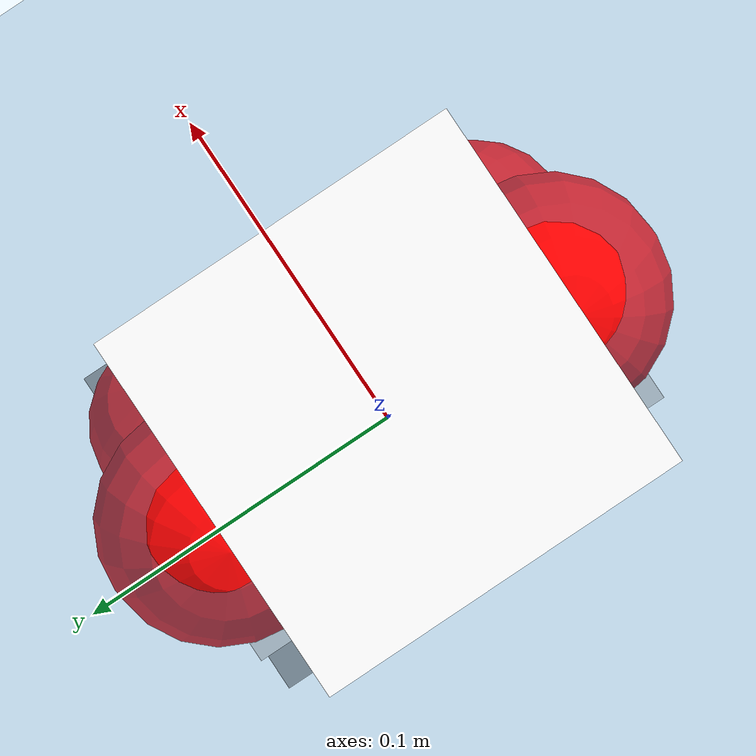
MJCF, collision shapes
<mujoco model="pi_12dof_release_v1">
  <compiler angle="radian" assetdir="assets" balanceinertia="true" inertiafromgeom="false"/>

  <option timestep="0.005" density="1.2" viscosity="2e-05"/>

  <size nkey="1"/>

  <visual>
    <quality shadowsize="8192"/>
    <map shadowclip="0.5"/>
  </visual>

  <default>
    <default class="/">
      <joint armature="0.01" damping="0.01" frictionloss="0.01"/>
      <geom contype="0" conaffinity="0" group="1" solref="-1000 -80"/>
      <site size="0.01 0.005 0.005" group="5"/>
      <general forcelimited="true" biastype="affine" gainprm="20" biasprm="0 -20 -0.5"/>
      <default class="foot">
        <geom size="0.0845 0.036 0.005" type="box" condim="6" group="4" priority="1" friction="0.9 0.2 0.2" solimp="0.015 1 0.005"/>
      </default>
      <default class="reward_collision_sphere">
        <geom group="5" rgba="1 0 0 1"/>
      </default>
    </default>
  </default>

  <asset>
    <texture type="skybox" colorspace="auto" name="//unnamed_texture_0" builtin="gradient" rgb1="0.95 0.95 0.95" rgb2="0.95 0.95 0.95" width="100" height="600"/>
    <texture type="2d" colorspace="auto" name="texplane" builtin="checker" rgb1="0.345 0.575 0.748" rgb2="0.345 0.575 0.748" markrgb="1 1 1" width="512" height="512"/>
    <material name="MatPlane" class="/" texture="texplane" texuniform="true" texrepeat="2 2" specular="0.9"/>
    <mesh name="baselink_1" class="/" file="baselink_1.STL"/>
    <mesh name="r_hip_pitch_link" class="/" file="r_hip_pitch_link.STL"/>
    <mesh name="r_hip_roll_link" class="/" file="r_hip_roll_link.STL"/>
    <mesh name="r_thigh_link" class="/" file="r_thigh_link.STL"/>
    <mesh name="r_calf_link" class="/" file="r_calf_link.STL"/>
    <mesh name="r_ankle_pitch_link" class="/" file="r_ankle_pitch_link.STL"/>
    <mesh name="r_ankle_roll_link" class="/" file="r_ankle_roll_link.STL"/>
    <mesh name="l_hip_pitch_link" class="/" file="l_hip_pitch_link.STL"/>
    <mesh name="l_hip_roll_link" class="/" file="l_hip_roll_link.STL"/>
    <mesh name="l_thigh_link" class="/" file="l_thigh_link.STL"/>
    <mesh name="l_calf_link" class="/" file="l_calf_link.STL"/>
    <mesh name="l_ankle_pitch_link" class="/" file="l_ankle_pitch_link.STL"/>
    <mesh name="l_ankle_roll_link" class="/" file="l_ankle_roll_link.STL"/>
  </asset>

  <worldbody>
    <geom name="floor" class="/" size="100 100 0.125" type="plane" group="0" material="MatPlane"/>
    <light name="toplight_shadow" class="/" pos="0 0 5" dir="0.0990148 0.0990148 -0.990148" type="directional" ambient="0.04 0.04 0.04" diffuse="0.55 0.55 0.55" specular="0.12 0.12 0.12"/>
    <light name="toplight_fill" class="/" pos="0 0 5" dir="0.0990148 0.0990148 -0.990148" type="directional" castshadow="false" ambient="0.04 0.04 0.04" diffuse="0.3 0.3 0.3" specular="0.08 0.08 0.08"/>
    <body name="trunk" pos="0.00259291 -0.00022753 -0.000614396" quat="0.999999 0.00124663 0.000153147 -0.000505711">
      <inertial pos="-0.000264115 -0.000443426 0.0418073" quat="0.698318 0.0119408 0.0076949 0.715646" mass="1.75547" diaginertia="0.0123775 0.00227249 0.00461999"/>
      <joint name="//unnamed_joint_0" type="free"/>
      <geom name="//unnamed_geom_1" class="/" type="mesh" density="0" rgba="1 1 1 1" mesh="baselink_1"/>
      <geom name="//unnamed_geom_2" class="/" size="0.0471398 0.0471398 0.0471398" pos="0 0 0.0817395" type="box" rgba="1 1 1 1"/>
      <geom name="//unnamed_geom_3" class="reward_collision_sphere" size="0.0518538" pos="0 0 0.0715221"/>
      <site name="imu" class="/" pos="-0.000234626 0.00577753 0.0134935" size="0.00942795"/>
      <camera name="track" class="/" pos="0 -1.51794 0" quat="0.707107 0.707107 0 0" mode="trackcom"/>
      <camera name="ego_camera" class="/" pos="0.0785756 0 0.183914" quat="-0.5 -0.5 0.5 0.5"/>
      <body name="r_hip_pitch_link" pos="-0.000409794 -0.0162394 -0.0329751" quat="0.992202 7.47631e-05 -0.124643 5.13574e-05">
        <inertial pos="-3.17359e-05 -0.0449211 0.000116868" quat="-0.0179927 0.706057 -0.0287937 0.707341" mass="0.303603" diaginertia="0.000139534 2.46567e-05 9.24766e-05"/>
        <joint name="r_hip_pitch_joint" class="/" pos="0 0 0" axis="0.00943143 -0.999954 0.00174705" range="-1.76589 1.23473" armature="0.0096891" damping="0.0255666" frictionloss="0.01049"/>
        <geom name="//unnamed_geom_4" class="/" type="mesh" density="0" rgba="0.75294 0.75294 0.75294 1" mesh="r_hip_pitch_link"/>
        <geom name="//unnamed_geom_5" class="/" size="0.000471398 0.000471398 0.000471398" type="box" rgba="0.75294 0.75294 0.75294 1"/>
        <body name="r_hip_roll_link" pos="0.00143313 -0.0428216 0.00145083" quat="0.999999 -0.0003131 0.00102629 -0.000726597">
          <inertial pos="0.000946157 -0.00194396 -0.0651863" quat="0.706108 -0.0786573 -0.0824207 0.698879" mass="0.315118" diaginertia="0.000414131 6.82605e-05 0.00014346"/>
          <joint name="r_hip_roll_joint" class="/" pos="0 0 0" axis="-0.999938 0.0107088 -0.00295831" range="-0.101589 0.453792" armature="0.00940605" damping="0" frictionloss="0.0106379"/>
          <geom name="//unnamed_geom_6" class="/" type="mesh" density="0" rgba="0.75294 0.75294 0.75294 1" mesh="r_hip_roll_link"/>
          <geom name="//unnamed_geom_7" class="/" size="0.000471398 0.000471398 0.000471398" type="box" rgba="0.75294 0.75294 0.75294 1"/>
          <geom name="//unnamed_geom_8" class="reward_collision_sphere" size="0.0377118"/>
          <body name="r_thigh_link" pos="-0.0017805 -0.0022712 -0.0705106" quat="1 0.000160048 -0.000731664 0.000183908">
            <inertial pos="-0.00221675 0.000666748 -0.0465257" quat="0.737227 0.675646 -0.00019874 0.00020118" mass="0.0943086" diaginertia="0.000159755 2.51345e-05 6.59209e-05"/>
            <joint name="r_thigh_joint" class="/" pos="0 0 0" axis="-2.434e-06 2.15411e-06 -1" range="-0.350533 0.622676" armature="0.00883583" damping="0.000196964" frictionloss="0.0082133"/>
            <geom name="//unnamed_geom_9" class="/" type="mesh" density="0" rgba="0.75294 0.75294 0.75294 1" mesh="r_thigh_link"/>
            <geom name="//unnamed_geom_10" class="/" size="0.000471398 0.000471398 0.000471398" type="box" rgba="0.75294 0.75294 0.75294 1"/>
            <body name="r_calf_link" pos="-0.00165212 -0.00167479 -0.074782" quat="0.947379 -0.000298987 0.320113 0.000755437">
              <inertial pos="0.000303123 -0.00342528 -0.0713753" quat="0.999896 0.0060592 -0.00521157 0.012006" mass="0.674451" diaginertia="0.00424811 0.000867721 0.000186992"/>
              <joint name="r_calf_joint" class="/" pos="0 0 0" axis="0.0115392 -0.999927 0.00368053" range="-1.59727 0.654563" armature="0.00979643" damping="0.00389394" frictionloss="0.0105266"/>
              <geom name="//unnamed_geom_11" class="/" type="mesh" density="0" rgba="0.75294 0.75294 0.75294 1" mesh="r_calf_link"/>
              <geom name="//unnamed_geom_12" class="/" size="0.000471398 0.000471398 0.000471398" type="box" rgba="0.75294 0.75294 0.75294 1"/>
              <geom name="//unnamed_geom_13" class="reward_collision_sphere" size="0.0377118"/>
              <body name="r_ankle_pitch_link" pos="0.000571662 -0.00247435 -0.143308" quat="0.980078 -0.000296184 -0.198615 -0.000110382">
                <inertial pos="0.00622645 0.000398703 -1.66598e-05" quat="0.00530484 0.710929 -0.00881712 0.703189" mass="0.149133" diaginertia="0.000385287 5.57549e-05 0.00013647"/>
                <joint name="r_ankle_pitch_joint" class="/" pos="0 0 0" axis="0.00950585 -0.99992 0.00830493" range="-1.28894 0.505146" armature="0.00954012" damping="0" frictionloss="0.010046"/>
                <geom name="//unnamed_geom_14" class="/" type="mesh" density="0" rgba="0.75294 0.75294 0.75294 1" mesh="r_ankle_pitch_link"/>
                <geom name="//unnamed_geom_15" class="/" size="0.036769 0.0377118 0.0235699" type="box" rgba="0.75294 0.75294 0.75294 1"/>
                <body name="r_ankle_roll_link" pos="0.0791014 0.000225273 0.000193136" quat="1 -1.70769e-06 0.000155372 -2.88473e-05">
                  <inertial pos="-0.024933 0.000296301 -0.0149535" quat="0.55175 0.426893 0.435449 0.568963" mass="0.431238" diaginertia="0.00142264 0.000259673 0.000306452"/>
                  <joint name="r_ankle_roll_joint" class="/" pos="0 0 0" axis="-0.9999 -0.00380837 -0.0136305" stiffness="0.000542318" range="-0.204079 0.156565" armature="0.0107453" damping="0.0141265" frictionloss="0.00950546"/>
                  <geom name="//unnamed_geom_16" class="/" type="mesh" density="0" rgba="0.75294 0.75294 0.75294 1" mesh="r_ankle_roll_link"/>
                  <geom name="//unnamed_geom_17" class="/" type="mesh" rgba="0.75294 0.75294 0.75294 1" mesh="r_ankle_roll_link"/>
                  <geom name="right_foot" class="foot" size="0.0800042 0.0323364 0.00440906" pos="-0.0534314 0 -0.0449567"/>
                  <geom name="//unnamed_geom_19" class="reward_collision_sphere" size="0.0377118" pos="-0.0523837 0 -0.0204349"/>
                  <geom name="//unnamed_geom_20" class="reward_collision_sphere" size="0.0188559" pos="0.0157151 0.0151794 -0.0408698"/>
                  <geom name="//unnamed_geom_21" class="reward_collision_sphere" size="0.0188559" pos="-0.125721 0.0151794 -0.0408698"/>
                  <site name="right_foot" class="foot" pos="-0.0534314 0 -0.0449567" size="0.00942795"/>
                </body>
              </body>
            </body>
          </body>
        </body>
      </body>
      <body name="l_hip_pitch_link" pos="0.000119539 0.0179844 -0.0353282" quat="0.992169 -0.000150877 -0.124901 5.90894e-05">
        <inertial pos="0.00075273 0.0435196 -0.00236218" quat="-0.028357 0.704946 0.0222777 0.708344" mass="0.333073" diaginertia="0.000159713 2.5953e-05 0.000114393"/>
        <joint name="l_hip_pitch_joint" class="/" pos="0 0 0" axis="-0.0127671 0.999902 0.00568691" range="-1.25414 1.7509" armature="0.0092609" damping="0.0135034" frictionloss="0.00937635"/>
        <geom name="//unnamed_geom_22" class="/" type="mesh" density="0" rgba="0.75294 0.75294 0.75294 1" mesh="l_hip_pitch_link"/>
        <geom name="//unnamed_geom_23" class="/" size="0.000471398 0.000471398 0.000471398" type="box" rgba="0.75294 0.75294 0.75294 1"/>
        <body name="l_hip_roll_link" pos="0.000398347 0.0399959 0.00305371" quat="1 -0.000190644 -0.000143521 0.000153837">
          <inertial pos="-0.00134424 -0.000263711 -0.0633715" quat="0.698276 -0.075325 -0.0770929 0.707668" mass="0.332708" diaginertia="0.000418572 6.83018e-05 0.000144729"/>
          <joint name="l_hip_roll_joint" class="/" pos="0 0 0" axis="-1 -0.000356435 -4.34875e-06" range="-0.488727 0.166147" armature="0.00939845" damping="0.00408144" frictionloss="0.00961612"/>
          <geom name="//unnamed_geom_24" class="/" type="mesh" density="0" rgba="0.75294 0.75294 0.75294 1" mesh="l_hip_roll_link"/>
          <geom name="//unnamed_geom_25" class="/" size="0.000471398 0.000471398 0.000471398" type="box" rgba="0.75294 0.75294 0.75294 1"/>
          <geom name="//unnamed_geom_26" class="reward_collision_sphere" size="0.0377118"/>
          <body name="l_thigh_link" pos="0.000142076 0.000305651 -0.0730608" quat="1 0.000240007 0.000164445 -0.000346648">
            <inertial pos="0.000834511 0.00125101 -0.0483817" quat="0.678643 0.734463 -0.000116988 0.00262904" mass="0.0939598" diaginertia="0.000154463 2.38093e-05 6.19775e-05"/>
            <joint name="l_thigh_joint" class="/" pos="0 0 0" axis="0.000242351 -0.000267699 -1" range="-0.59144 0.339076" armature="0.00979384" damping="0" frictionloss="0.00989928"/>
            <geom name="//unnamed_geom_27" class="/" type="mesh" density="0" rgba="0.75294 0.75294 0.75294 1" mesh="l_thigh_link"/>
            <geom name="//unnamed_geom_28" class="/" size="0.000471398 0.000471398 0.000471398" type="box" rgba="0.75294 0.75294 0.75294 1"/>
            <body name="l_calf_link" pos="-0.00028649 -0.000632729 -0.070721" quat="0.947656 -0.000252429 0.31929 -0.00133574">
              <inertial pos="0.00308512 0.0043192 -0.0740478" quat="0.999882 0.00366575 0.00175227 0.0148367" mass="0.680471" diaginertia="0.00442 0.00087384 0.00019416"/>
              <joint name="l_calf_joint" class="/" pos="0 0 0" axis="-0.00377654 0.999988 0.00321688" range="-0.635532 1.62521" armature="0.009097" damping="0.0104188" frictionloss="0.00819731"/>
              <geom name="//unnamed_geom_29" class="/" type="mesh" density="0" rgba="0.75294 0.75294 0.75294 1" mesh="l_calf_link"/>
              <geom name="//unnamed_geom_30" class="/" size="0.000471398 0.000471398 0.000471398" type="box" rgba="0.75294 0.75294 0.75294 1"/>
              <geom name="//unnamed_geom_31" class="reward_collision_sphere" size="0.0377118"/>
              <body name="l_ankle_pitch_link" pos="0.000953203 0.000616614 -0.145515" quat="0.980058 3.60254e-05 -0.19871 -1.10317e-05">
                <inertial pos="0.00598372 -0.00102025 -0.000195279" quat="-0.00232607 0.707195 0.00222737 0.707011" mass="0.14272" diaginertia="0.000393224 5.71822e-05 0.000133052"/>
                <joint name="l_ankle_pitch_joint" class="/" pos="0 0 0" axis="-0.00394036 0.999992 -0.000833575" range="-0.505754 1.2953" armature="0.00944814" damping="0.0095009" frictionloss="0.00959853"/>
                <geom name="//unnamed_geom_32" class="/" type="mesh" density="0" rgba="0.75294 0.75294 0.75294 1" mesh="l_ankle_pitch_link"/>
                <geom name="//unnamed_geom_33" class="/" size="0.036769 0.0377118 0.0235699" type="box" rgba="0.75294 0.75294 0.75294 1"/>
                <body name="l_ankle_roll_link" pos="0.0782297 0.00108729 0.000794183" quat="1 -4.67933e-05 -1.37421e-06 -0.000139925">
                  <inertial pos="-0.0279322 -0.000324807 -0.0154475" quat="0.559468 0.43143 0.438514 0.555489" mass="0.434108" diaginertia="0.00142722 0.000261642 0.000325836"/>
                  <joint name="l_ankle_roll_joint" class="/" pos="0 0 0" axis="-0.999917 -0.0120326 -0.00470139" range="-0.153303 0.163481" armature="0.00964718" damping="0.0209056" frictionloss="0.00941151"/>
                  <geom name="//unnamed_geom_34" class="/" type="mesh" density="0" rgba="0.75294 0.75294 0.75294 1" mesh="l_ankle_roll_link"/>
                  <geom name="//unnamed_geom_35" class="/" type="mesh" rgba="0.75294 0.75294 0.75294 1" mesh="l_ankle_roll_link"/>
                  <geom name="left_foot" class="foot" size="0.0825212 0.0393381 0.00419299" pos="-0.0534314 0 -0.0449567"/>
                  <geom name="//unnamed_geom_37" class="reward_collision_sphere" size="0.0377118" pos="-0.0523837 0 -0.0204349"/>
                  <geom name="//unnamed_geom_38" class="reward_collision_sphere" size="0.0188559" pos="0.0157151 -0.0151794 -0.0408698"/>
                  <geom name="//unnamed_geom_39" class="reward_collision_sphere" size="0.0188559" pos="-0.125721 -0.0151794 -0.0408698"/>
                  <site name="left_foot" class="foot" pos="-0.0534314 0 -0.0449567" size="0.00942795"/>
                </body>
              </body>
            </body>
          </body>
        </body>
      </body>
    </body>
  </worldbody>

  <contact>
    <pair class="/" geom1="floor" geom2="right_foot" name="//unnamed_contact_1"/>
    <pair class="/" geom1="floor" geom2="left_foot" name="//unnamed_contact_0"/>
  </contact>

  <actuator>
    <general name="r_hip_pitch_joint" class="/" joint="r_hip_pitch_joint" forcerange="-19.5366 19.5366" gainprm="19.2093" biasprm="0 -19.2093 -0.481451"/>
    <general name="r_hip_roll_joint" class="/" joint="r_hip_roll_joint" forcerange="-20.9598 20.9598" gainprm="19.2093" biasprm="0 -19.2093 -0.481451"/>
    <general name="r_thigh_joint" class="/" joint="r_thigh_joint" forcerange="-20.467 20.467" gainprm="19.2093" biasprm="0 -19.2093 -0.481451"/>
    <general name="r_calf_joint" class="/" joint="r_calf_joint" forcerange="-21.7457 21.7457" gainprm="19.2093" biasprm="0 -19.2093 -0.481451"/>
    <general name="r_ankle_pitch_joint" class="/" joint="r_ankle_pitch_joint" forcerange="-19.0098 19.0098" gainprm="19.2093" biasprm="0 -19.2093 -0.481451"/>
    <general name="r_ankle_roll_joint" class="/" joint="r_ankle_roll_joint" forcerange="-17.7832 17.7832" gainprm="19.2093" biasprm="0 -19.2093 -0.481451"/>
    <general name="l_hip_pitch_joint" class="/" joint="l_hip_pitch_joint" forcerange="-19.7765 19.7765" gainprm="19.2093" biasprm="0 -19.2093 -0.481451"/>
    <general name="l_hip_roll_joint" class="/" joint="l_hip_roll_joint" forcerange="-19.0364 19.0364" gainprm="19.2093" biasprm="0 -19.2093 -0.481451"/>
    <general name="l_thigh_joint" class="/" joint="l_thigh_joint" forcerange="-20.2021 20.2021" gainprm="19.2093" biasprm="0 -19.2093 -0.481451"/>
    <general name="l_calf_joint" class="/" joint="l_calf_joint" forcerange="-19.3984 19.3984" gainprm="19.2093" biasprm="0 -19.2093 -0.481451"/>
    <general name="l_ankle_pitch_joint" class="/" joint="l_ankle_pitch_joint" forcerange="-20.5043 20.5043" gainprm="19.2093" biasprm="0 -19.2093 -0.481451"/>
    <general name="l_ankle_roll_joint" class="/" joint="l_ankle_roll_joint" forcerange="-19.7849 19.7849" gainprm="19.2093" biasprm="0 -19.2093 -0.481451"/>
  </actuator>

  <sensor>
    <gyro site="imu" name="imu_angular_velocity"/>
    <velocimeter site="imu" name="imu_linear_velocity"/>
    <framelinvel objtype="site" objname="left_foot" name="left_foot_global_linear_velocity"/>
    <framelinvel objtype="site" objname="right_foot" name="right_foot_global_linear_velocity"/>
  </sensor>

  <keyframe>
    <key name="home" qpos="0 0 0.291 1 0 0 0 0.4 0 0 -0.8 0.4 0 -0.4 0 0 0.8 -0.4 0"/>
  </keyframe>
</mujoco>
